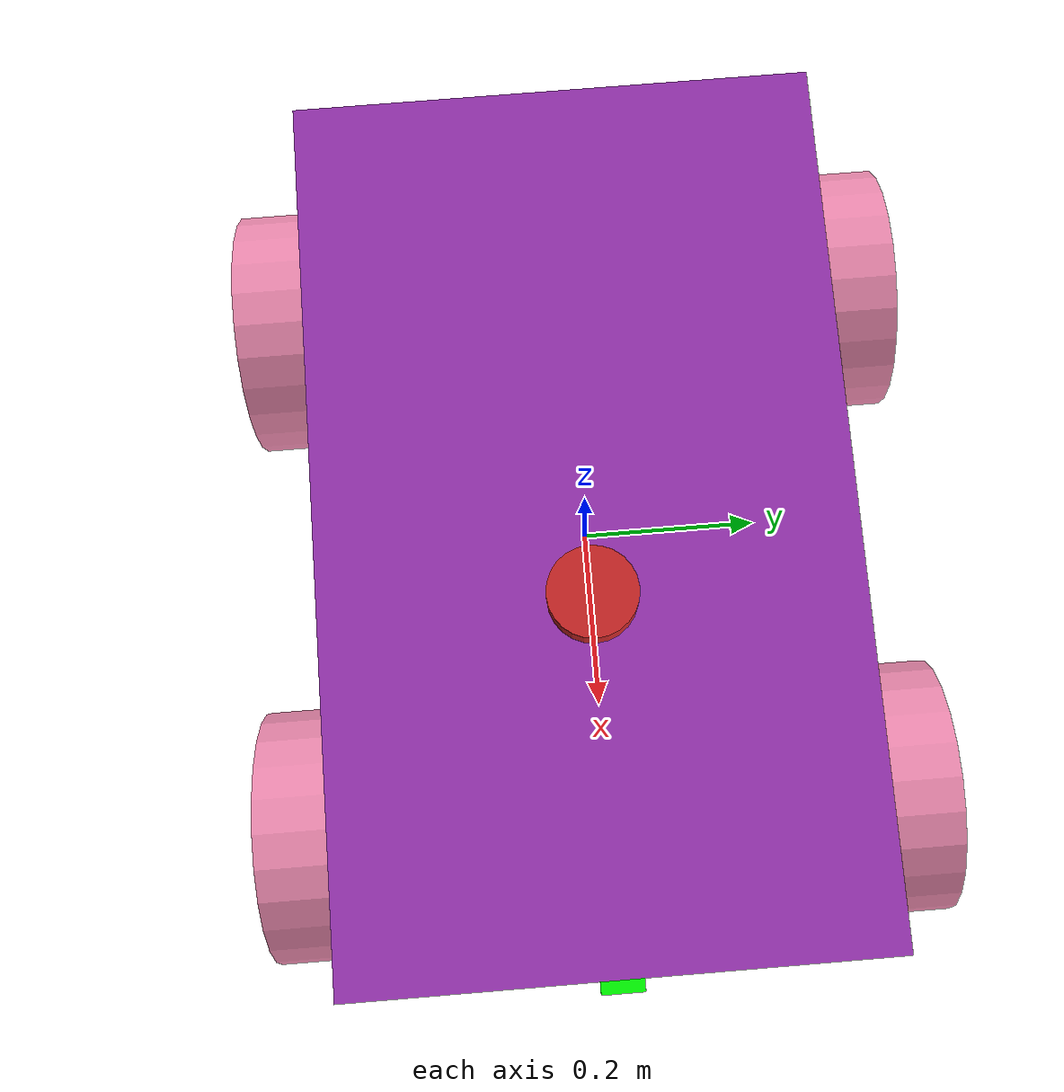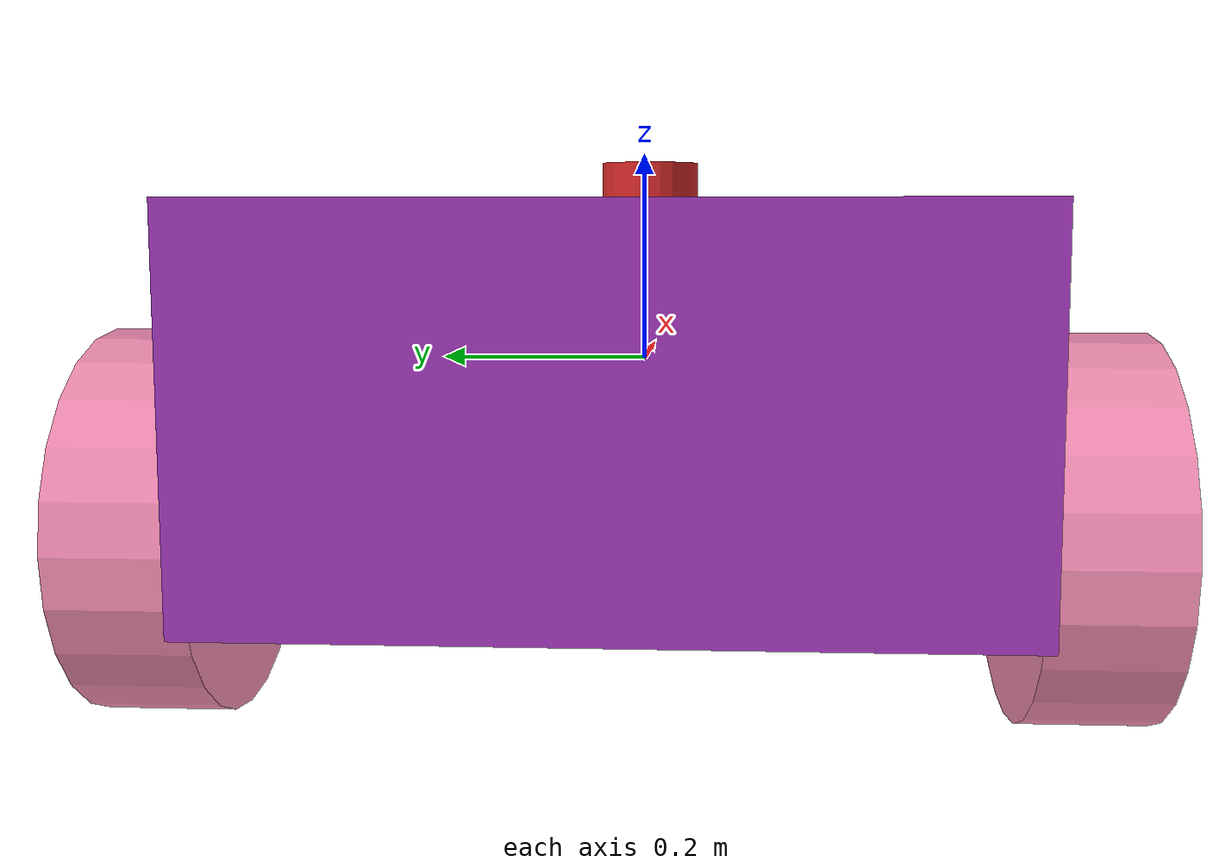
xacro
<?xml version="1.0"?>
<robot name="differential_drive_robot" xmlns:xacro="http://www.ros.org/wiki/xacro">

  <xacro:property name="body_link_x_dim" value="1"/>
  <xacro:property name="body_link_y_dim" value="0.6"/>
  <xacro:property name="body_link_z_dim" value="0.3"/>

  <xacro:property name="cameraSize" value="0.05"/>
  <xacro:property name="cameraMass" value="0.1"/>

  <xacro:property name="wheel_link_radius" value="0.15"/>
  <xacro:property name="wheel_link_length" value="0.1"/>
  <xacro:property name="wheel_link_z_location" value="-0.1"/>

  <xacro:property name="body_density" value="2710.0"/>
  <xacro:property name="wheel_density" value="2710.0"/>

  <xacro:property name="pi_const" value="3.14159265"/>

  <xacro:property name="body_mass" value="${body_density * body_link_x_dim * body_link_y_dim * body_link_z_dim}"/>
  <xacro:property name="wheel_mass" value="${wheel_density * pi_const * wheel_link_radius * wheel_link_length}"/>

  <xacro:property name="Iz_wheel" value="${0.5 * wheel_mass * wheel_link_radius * wheel_link_radius}"/>
  <xacro:property name="I_wheel" value="${(1.0 / 12.0) * wheel_mass * (3.0 * wheel_link_radius * wheel_link_radius + wheel_link_length)}"/>

  <xacro:macro name="inertia_wheel">
    <inertial>
      <origin rpy="0 0 0" xyz="0 0 0"/>
      <mass value="${wheel_mass}"/>
      <inertia ixx="${I_wheel}" ixy="0.0" ixz="0.0" iyy="${I_wheel}" iyz="0" izz="${Iz_wheel}"/>
    </inertial>
  </xacro:macro>

  <xacro:include filename="$(find robot_model_pkg)/urdf/robot.gazebo"/>

  <link name="dummy"/>
  <joint name="dummy_joint" type="fixed">
    <parent link="dummy"/>
    <child link="body_link"/>
  </joint>

  <link name="body_link">
    <visual>
      <geometry>
        <box size="${body_link_x_dim} ${body_link_y_dim} ${body_link_z_dim}"/>
      </geometry>
      <origin rpy="0 0 0" xyz="0 0 0"/>
    </visual>

    <collision>
      <geometry>
        <box size="${body_link_x_dim} ${body_link_y_dim} ${body_link_z_dim}"/>
      </geometry>
      <origin rpy="0 0 0" xyz="0 0 0"/>
    </collision>

    <inertial>
      <origin rpy="0 0 0" xyz="0 0 0"/>
      <mass value="${body_mass}"/>
      <inertia ixx="${(1/12)*body_mass*(body_link_y_dim*body_link_y_dim+body_link_z_dim*body_link_z_dim)}" ixy="0" ixz="0" iyy="${(1/12)*body_mass*(body_link_x_dim*body_link_x_dim+body_link_z_dim*body_link_z_dim)}" iyz="0" izz="${(1/12)*body_mass*(body_link_y_dim*body_link_y_dim+body_link_x_dim*body_link_x_dim)}"/>
    </inertial>
  </link>

  <joint name="wheel1_joint" type="continuous">
    <parent link="body_link"/>
    <child link="wheel1_link" />
    <origin xyz="${-body_link_x_dim/2+1.2*wheel_link_radius} ${-body_link_y_dim/2-wheel_link_length/2} ${wheel_link_z_location}" rpy="0 0 0" />
    <axis xyz="0 1 0"/>
    <limit effort="1000" velocity="1000"/>
    <dynamics damping="1.0" friction="1.0"/>
  </joint>

  <link name="wheel1_link">
    <visual>
      <origin rpy="1.570795 0 0" xyz="0 0 0"/>
      <geometry>
        <cylinder length="${wheel_link_length}" radius="${wheel_link_radius}"/>
      </geometry>
    </visual>

    <collision>
      <origin rpy="1.570795 0 0" xyz="0 0 0"/>
      <geometry>
        <cylinder length="${wheel_link_length}" radius="${wheel_link_radius}"/>
      </geometry>
    </collision>

    <xacro:inertia_wheel />

  </link>

  <joint name="wheel2_joint" type="continuous">
    <parent link="body_link"/>
    <child link="wheel2_link" />
    <origin xyz="${-body_link_x_dim/2+1.2*wheel_link_radius} ${body_link_y_dim/2+wheel_link_length/2} ${wheel_link_z_location}" rpy="0 0 0" />
    <axis xyz="0 1 0"/>
    <limit effort="1000" velocity="1000"/>
    <dynamics damping="1.0" friction="1.0"/>
  </joint>

  <link name="wheel2_link">
    <visual>
      <origin rpy="1.570795 0 0" xyz="0 0 0"/>
      <geometry>
        <cylinder length="${wheel_link_length}" radius="${wheel_link_radius}"/>
      </geometry>
    </visual>

    <collision>
      <origin rpy="1.570795 0 0" xyz="0 0 0"/>
      <geometry>
        <cylinder length="${wheel_link_length}" radius="${wheel_link_radius}"/>
      </geometry>
    </collision>

    <xacro:inertia_wheel />
  </link>

  <joint name="wheel3_joint" type="continuous">
    <parent link="body_link"/>
    <child link="wheel3_link" />
    <origin xyz="${body_link_x_dim/2-1.2*wheel_link_radius} ${-body_link_y_dim/2-wheel_link_length/2} ${wheel_link_z_location}" rpy="0 0 0" />
    <axis xyz="0 1 0"/>
    <limit effort="1000" velocity="1000"/>
    <dynamics damping="1.0" friction="1.0"/>
  </joint>

  <link name="wheel3_link">
    <visual>
      <origin rpy="1.570795 0 0" xyz="0 0 0"/>
      <geometry>
        <cylinder length="${wheel_link_length}" radius="${wheel_link_radius}"/>
      </geometry>
    </visual>

    <collision>
      <origin rpy="1.570795 0 0" xyz="0 0 0"/>
      <geometry>
        <cylinder length="${wheel_link_length}" radius="${wheel_link_radius}"/>
      </geometry>
    </collision>

    <xacro:inertia_wheel />
  </link>

  <joint name="wheel4_joint" type="continuous">
    <parent link="body_link"/>
    <child link="wheel4_link" />
    <origin xyz="${body_link_x_dim/2-1.2*wheel_link_radius} ${body_link_y_dim/2+wheel_link_length/2} ${wheel_link_z_location}" rpy="0 0 0" />
    <axis xyz="0 1 0"/>
    <limit effort="1000" velocity="1000"/>
    <dynamics damping="1.0" friction="1.0"/>
  </joint>

  <link name="wheel4_link">
    <visual>
      <origin rpy="1.570795 0 0" xyz="0 0 0"/>
      <geometry>
        <cylinder length="${wheel_link_length}" radius="${wheel_link_radius}"/>
      </geometry>
    </visual>

    <collision>
      <origin rpy="1.570795 0 0" xyz="0 0 0"/>
      <geometry>
        <cylinder length="${wheel_link_length}" radius="${wheel_link_radius}"/>
      </geometry>
    </collision>

    <xacro:inertia_wheel />
  </link>

  <link name="camera_link">
    <collision>
      <origin xyz="0 0 0" rpy="0 0 0"/>
      <geometry>
        <box size="${cameraSize} ${cameraSize} ${cameraSize}"/>
      </geometry>
    </collision>

    <visual>
      <origin xyz="0 0 0" rpy="0 0 0"/>
      <geometry>
        <box size="${cameraSize} ${cameraSize} ${cameraSize}"/>
      </geometry>
      <material name="green">
        <color rgba="0 1 0 1"/> <!-- Green color with full opacity -->
      </material>
    </visual>

    <inertial>
      <mass value="${cameraMass}" />
      <origin xyz="0 0 0" rpy="0 0 0"/>
      <box_inertia m="${cameraMass}" x="${cameraSize}" y="${cameraSize}" z="${cameraSize}" />
      <inertia ixx="1e-6" ixy="0" ixz="0" iyy="1e-6" iyz="0" izz="1e-6" />
    </inertial>
  </link>

  <joint name="camera_joint" type="fixed">
    <axis xyz="0 1 0" />
    <origin xyz="0.5 0 0" rpy="0 0 0"/>
    <parent link="body_link"/>
    <child link="camera_link"/>
  </joint>

  <!-- Define 2D lidar sensor -->
  <link name="laser_frame">
    <visual>
      <geometry>
        <cylinder radius="0.05" length="0.04"/>
      </geometry>
      <material name="red"/>
    </visual>
    <collision>
      <geometry>
        <cylinder radius="0.05" length="0.04"/>
      </geometry>
    </collision>
    <inertial>
      <mass value="0.1"/>
      <origin xyz="0 0 0" rpy="0 0 0"/>
      <inertia ixx="1e-6" ixy="0" ixz="0" iyy="1e-6" iyz="0" izz="1e-6" />
    </inertial>
  </link>

  <joint name="laser_joint" type="fixed">
    <parent link="body_link"/>
    <child link="laser_frame"/>
    <origin xyz="0.1 0 0.175" rpy="0 0 0"/>
  </joint>

</robot>
